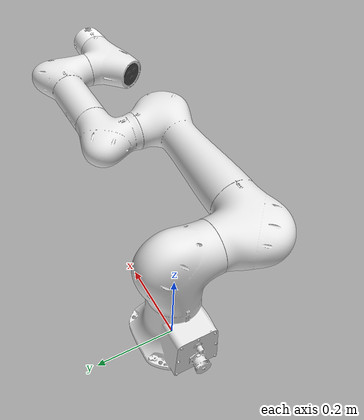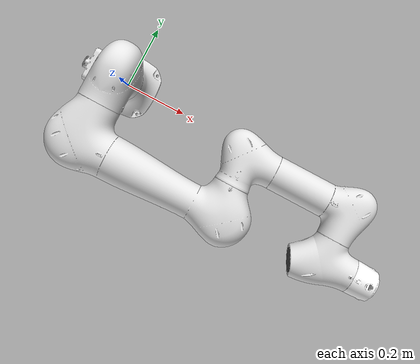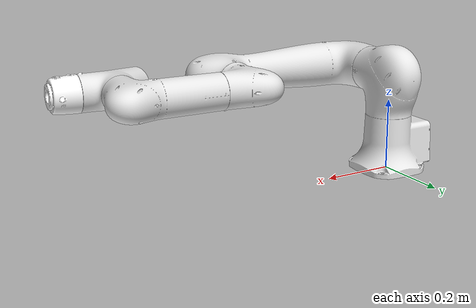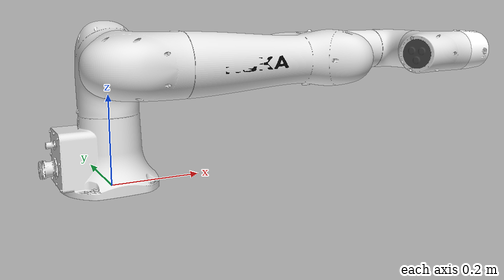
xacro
<?xml version="1.0" encoding="UTF-8"?>
<robot xmlns:xacro="http://www.ros.org/wiki/xacro" name="lbr_iico7_r900">
  <!-- Import urdf files  -->
  <xacro:include filename="$(find kuka_lbr_iico_support)/urdf/lbr_iico7_r900_macro.xacro"/>
  <xacro:include filename="$(find kuka_lbr_iico_support)/urdf/lbr_iico_ros2_control_macro.xacro"/>
  <!-- Basic arguments  -->
  <xacro:arg name="prefix" default=""/>
  <xacro:arg name="x" default="0"/>
  <xacro:arg name="y" default="0"/>
  <xacro:arg name="z" default="0"/>
  <xacro:arg name="roll" default="0"/>
  <xacro:arg name="pitch" default="0"/>
  <xacro:arg name="yaw" default="0"/>
  <!-- kroshu-specific arguments -->
  <xacro:arg name="driver_version" default="rsi_only"/>
  <xacro:arg name="mode" default="hardware"/>
  <xacro:arg name="gpio_config" default=""/>
  <xacro:arg name="roundtrip_time" default="0"/>
  <xacro:arg name="client_ip" default="0.0.0.0"/>
  <xacro:arg name="client_port" default="59152"/>
  <xacro:arg name="mxa_client_port" default="1337"/>
  <xacro:arg name="controller_ip" default="0.0.0.0"/>
  <xacro:arg name="verify_robot_model" default="true"/>
  <xacro:arg name="rsi_xml_config_file" default=""/>
  <xacro:kuka_lbr_iico_ros2_control name="$(arg prefix)lbr_iico7_r900" driver_version="$(arg driver_version)" client_ip="$(arg client_ip)" client_port="$(arg client_port)" mxa_client_port="$(arg mxa_client_port)" controller_ip="$(arg controller_ip)" prefix="$(arg prefix)" mode="$(arg mode)" gpio_config="$(arg gpio_config)" roundtrip_time="$(arg roundtrip_time)" verify_robot_model="$(arg verify_robot_model)" rsi_xml_config_file="$(arg rsi_xml_config_file)">
    <ext_axes_ros2_control_joints/>
  </xacro:kuka_lbr_iico_ros2_control>
  <!-- world link -->
  <link name="world"/>
  <!-- robot links, joints -->
  <xacro:kuka_lbr_iico7_r900_robot prefix="$(arg prefix)" package_name="kuka_lbr_iico_support"/>
  <!-- default world - base_link joint -->
  <joint name="$(arg prefix)world-base_link" type="fixed">
    <parent link="world"/>
    <child link="$(arg prefix)base_link"/>
    <origin xyz="$(arg x) $(arg y) $(arg z)" rpy="$(arg roll) $(arg pitch) $(arg yaw)"/>
  </joint>
</robot>

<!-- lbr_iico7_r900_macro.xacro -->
<robot xmlns:xacro="http://www.ros.org/wiki/xacro" name="lbr_iico7_r900">
  <xacro:macro name="kuka_lbr_iico7_r900_robot" params="prefix package_name">
    <link name="${prefix}base"/>
    <link name="${prefix}base_link">
      <collision>
        <geometry>
          <mesh filename="package://${package_name}/meshes/lbr_iico7_r900/collision/base_link.stl"/>
        </geometry>
        <origin rpy="0.0 0.0 0.0" xyz="0.0 0.0 0.0"/>
      </collision>
      <inertial>
        <inertia ixx="0.014370619144814469" ixy="0.0" ixz="0.0" iyy="0.026225172528880087" iyz="0.0" izz="0.027227159084847682"/>
        <mass value="3.4689300000000003"/>
        <origin rpy="-1.5810850030699095 -1.4987683880550986 0.005370894356335791" xyz="-0.004376796706765488 3.71987352236446e-19 0.10196118350615321"/>
      </inertial>
      <visual>
        <geometry>
          <mesh filename="package://${package_name}/meshes/lbr_iico7_r900/visual/base_link.dae"/>
        </geometry>
        <origin rpy="0.0 0.0 0.0" xyz="0.0 0.0 0.0"/>
      </visual>
    </link>
    <link name="${prefix}flange"/>
    <link name="${prefix}link_1">
      <collision>
        <geometry>
          <mesh filename="package://${package_name}/meshes/lbr_iico7_r900/collision/link_1.stl"/>
        </geometry>
        <origin rpy="-3.141592653589793 0.0 -0.0" xyz="0.0 -2.357445088358655e-17 0.1925"/>
      </collision>
      <inertial>
        <inertia ixx="0.027517977314391935" ixy="0.0" ixz="0.0" iyy="0.015398395558731251" iyz="0.0" izz="0.033770937857576136"/>
        <mass value="5.464650000000001"/>
        <origin rpy="1.4963558936745713 -1.5531312400733674 -1.4971850584433617" xyz="0.00018078358174814486 0.019425939538671277 -0.05298544737540372"/>
      </inertial>
      <visual>
        <geometry>
          <mesh filename="package://${package_name}/meshes/lbr_iico7_r900/visual/link_1.dae"/>
        </geometry>
        <origin rpy="-3.141592653589793 0.0 -0.0" xyz="0.0 -2.357445088358655e-17 0.1925"/>
      </visual>
    </link>
    <link name="${prefix}link_2">
      <collision>
        <geometry>
          <mesh filename="package://${package_name}/meshes/lbr_iico7_r900/collision/link_2.stl"/>
        </geometry>
        <origin rpy="1.5707963267948968 -0.0 1.5707963267948966" xyz="-0.2765 1.693074199821216e-17 0.12500000000000003"/>
      </collision>
      <inertial>
        <inertia ixx="0.37616523224502835" ixy="0.0" ixz="0.0" iyy="0.024765379567569606" iyz="0.0" izz="0.38618479331500566"/>
        <mass value="8.510110000000001"/>
        <origin rpy="-1.0238780372786005 -1.5652987783234498 2.5937983339181323" xyz="0.17879145847703498 -5.3290850529548205e-05 -0.05437930895135315"/>
      </inertial>
      <visual>
        <geometry>
          <mesh filename="package://${package_name}/meshes/lbr_iico7_r900/visual/link_2.dae"/>
        </geometry>
        <origin rpy="1.5707963267948968 -0.0 1.5707963267948966" xyz="-0.2765 1.693074199821216e-17 0.12500000000000003"/>
      </visual>
    </link>
    <link name="${prefix}link_3">
      <collision>
        <geometry>
          <mesh filename="package://${package_name}/meshes/lbr_iico7_r900/collision/link_3.stl"/>
        </geometry>
        <origin rpy="1.5707963267948968 -0.0 -0.0" xyz="-2.6023744481881253e-17 0.7015 0.11550000000000005"/>
      </collision>
      <inertial>
        <inertia ixx="0.005031394008782619" ixy="0.0" ixz="0.0" iyy="0.007058879848095981" iyz="0.0" izz="0.009247351709212355"/>
        <mass value="2.61564"/>
        <origin rpy="-1.552442263475105 -1.3728393931375342 3.1156811924780397" xyz="0.016107108011805902 -0.00023592971509840815 0.05825309507424569"/>
      </inertial>
      <visual>
        <geometry>
          <mesh filename="package://${package_name}/meshes/lbr_iico7_r900/visual/link_3.dae"/>
        </geometry>
        <origin rpy="1.5707963267948968 -0.0 -0.0" xyz="-2.6023744481881253e-17 0.7015 0.11550000000000005"/>
      </visual>
    </link>
    <link name="${prefix}link_4">
      <collision>
        <geometry>
          <mesh filename="package://${package_name}/meshes/lbr_iico7_r900/collision/link_4.stl"/>
        </geometry>
        <origin rpy="1.8369701987210297e-16 1.5707963267948966 0.0" xyz="-0.7015 0.033000000000000036 0.08349999999999999"/>
      </collision>
      <inertial>
        <inertia ixx="0.005923918882190526" ixy="0.0" ixz="0.0" iyy="0.03304677964135198" iyz="0.0" izz="0.035386311981114894"/>
        <mass value="3.04018"/>
        <origin rpy="1.5280649870613068 -1.5341325552392528 -1.5235890469306312" xyz="0.00021790315047135378 -0.013849105710846068 -0.15664467485477834"/>
      </inertial>
      <visual>
        <geometry>
          <mesh filename="package://${package_name}/meshes/lbr_iico7_r900/visual/link_4.dae"/>
        </geometry>
        <origin rpy="1.8369701987210297e-16 1.5707963267948966 0.0" xyz="-0.7015 0.033000000000000036 0.08349999999999999"/>
      </visual>
    </link>
    <link name="${prefix}link_5">
      <collision>
        <geometry>
          <mesh filename="package://${package_name}/meshes/lbr_iico7_r900/collision/link_5.stl"/>
        </geometry>
        <origin rpy="1.5707963267948968 -3.749399456654644e-33 -6.123233995736766e-17" xyz="-0.31499999999999995 0.7015 0.11650000000000002"/>
      </collision>
      <inertial>
        <inertia ixx="0.005188163082600729" ixy="0.0" ixz="0.0" iyy="0.005056853955022868" iyz="0.0" izz="0.00780450939421743"/>
        <mass value="2.35858"/>
        <origin rpy="-1.5806147112611837 1.0037912498684485 -0.0004981260695554169" xyz="0.01568025142246606 0.00028981938284900215 -0.05581325475497969"/>
      </inertial>
      <visual>
        <geometry>
          <mesh filename="package://${package_name}/meshes/lbr_iico7_r900/visual/link_5.dae"/>
        </geometry>
        <origin rpy="1.5707963267948968 -3.749399456654644e-33 -6.123233995736766e-17" xyz="-0.31499999999999995 0.7015 0.11650000000000002"/>
      </visual>
    </link>
    <link name="${prefix}link_6">
      <collision>
        <geometry>
          <mesh filename="package://${package_name}/meshes/lbr_iico7_r900/collision/link_6.stl"/>
        </geometry>
        <origin rpy="1.2246467991473532e-16 1.5707963267948966 0.0" xyz="-0.7015 0.18450000000000003 0.39849999999999997"/>
      </collision>
      <inertial>
        <inertia ixx="0.001299878376741922" ixy="0.0" ixz="0.0" iyy="0.0013508684739926534" iyz="0.0" izz="0.0013541828632228725"/>
        <mass value="1.081"/>
        <origin rpy="-1.425152960913914 -1.5183843326597155 3.0516817928174174" xyz="-0.00022048103607770584 6.484736355226642e-06 -0.02201129509713228"/>
      </inertial>
      <visual>
        <geometry>
          <mesh filename="package://${package_name}/meshes/lbr_iico7_r900/visual/link_6.dae"/>
        </geometry>
        <origin rpy="1.2246467991473532e-16 1.5707963267948966 0.0" xyz="-0.7015 0.18450000000000003 0.39849999999999997"/>
      </visual>
    </link>
    <link name="${prefix}tool0"/>
    <joint name="${prefix}base_link-base" type="fixed">
      <child link="${prefix}base"/>
      <origin rpy="0.0 0.0 0.0" xyz="0.0 0.0 0.0"/>
      <parent link="${prefix}base_link"/>
    </joint>
    <joint name="${prefix}joint_1" type="revolute">
      <axis xyz="0.0 0.0 1.0"/>
      <child link="${prefix}link_1"/>
      <limit effort="146.16" lower="-3.2288591161895095" upper="3.2288591161895095" velocity="3.141592653589793"/>
      <origin rpy="3.141592653589793 0.0 0.0" xyz="0.0 0.0 0.1925"/>
      <parent link="${prefix}base_link"/>
    </joint>
    <joint name="${prefix}joint_2" type="revolute">
      <axis xyz="0.0 0.0 1.0"/>
      <child link="${prefix}link_2"/>
      <limit effort="152.7932629442669" lower="-4.014257279586958" upper="0.8726646259971648" velocity="3.141592653589793"/>
      <origin rpy="1.5707963267948966 0.0 0.0" xyz="0.0 0.125 -0.084"/>
      <parent link="${prefix}link_1"/>
    </joint>
    <joint name="${prefix}joint_3" type="revolute">
      <axis xyz="0.0 0.0 1.0"/>
      <child link="${prefix}link_3"/>
      <limit effort="72.8220612688906" lower="-2.6179938779914944" upper="2.6179938779914944" velocity="3.141592653589793"/>
      <origin rpy="0.0 0.0 0.0" xyz="0.425 0.0 0.0095"/>
      <parent link="${prefix}link_2"/>
    </joint>
    <joint name="${prefix}joint_4" type="revolute">
      <axis xyz="0.0 0.0 1.0"/>
      <child link="${prefix}link_4"/>
      <limit effort="36.49358295122654" lower="-3.141592653589793" upper="3.141592653589793" velocity="3.141592653589793"/>
      <origin rpy="1.5707963267948966 0.0 -1.5707963267948966" xyz="0.0835 0.0 0.0825"/>
      <parent link="${prefix}link_3"/>
    </joint>
    <joint name="${prefix}joint_5" type="revolute">
      <axis xyz="0.0 0.0 1.0"/>
      <child link="${prefix}link_5"/>
      <limit effort="34.82637496892223" lower="-1.9198621771937625" upper="1.9198621771937625" velocity="3.141592653589793"/>
      <origin rpy="0.0 1.5707963267948966 1.5707963267948966" xyz="0.0 -0.0835 -0.2315"/>
      <parent link="${prefix}link_4"/>
    </joint>
    <joint name="${prefix}joint_6" type="revolute">
      <axis xyz="0.0 0.0 1.0"/>
      <child link="${prefix}link_6"/>
      <limit effort="19.1984808369027" lower="-3.839724354387525" upper="3.839724354387525" velocity="6.283185307179586"/>
      <origin rpy="1.5707963267948966 0.0 -1.5707963267948966" xyz="0.0835 0.0 -0.068"/>
      <parent link="${prefix}link_5"/>
    </joint>
    <joint name="${prefix}link_6-flange" type="fixed">
      <child link="${prefix}flange"/>
      <origin rpy="0.0 1.5707963267948966 0.0" xyz="0.0 0.0 -0.0765"/>
      <parent link="${prefix}link_6"/>
    </joint>
    <joint name="${prefix}link_6-tool0" type="fixed">
      <child link="${prefix}tool0"/>
      <origin rpy="3.141592653589793 0.0 3.141592653589793" xyz="0.0 0.0 -0.0765"/>
      <parent link="${prefix}link_6"/>
    </joint>
  </xacro:macro>
</robot>
